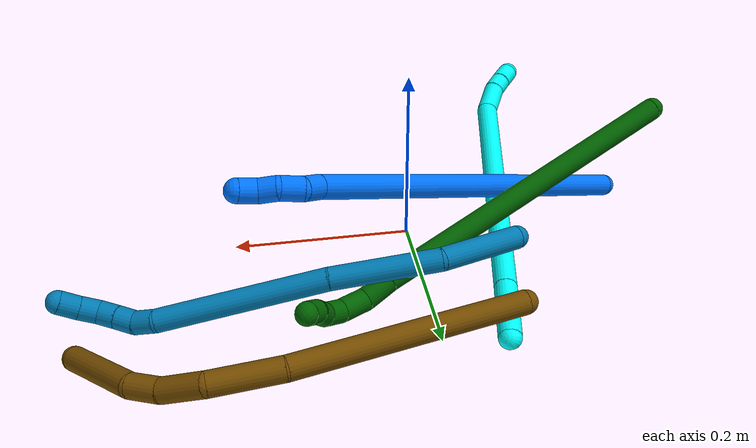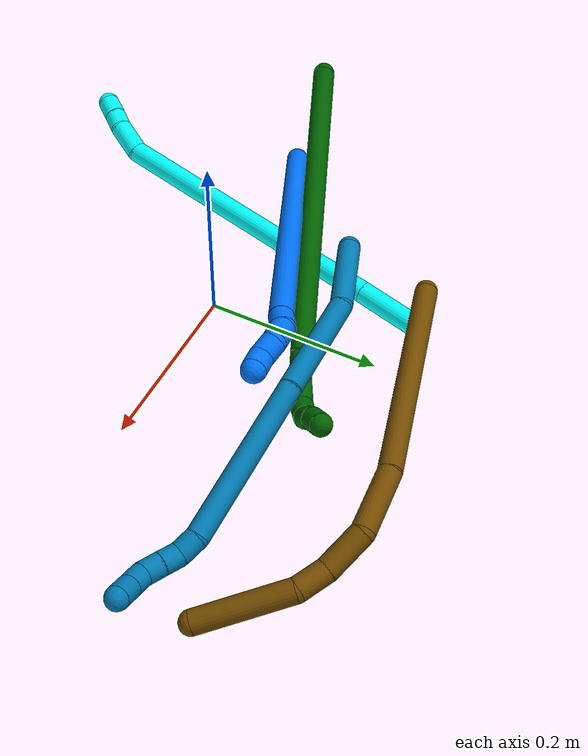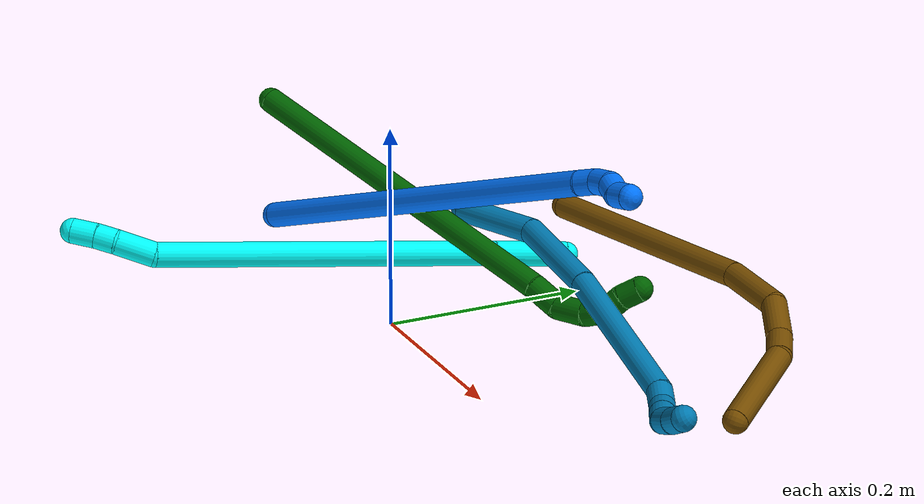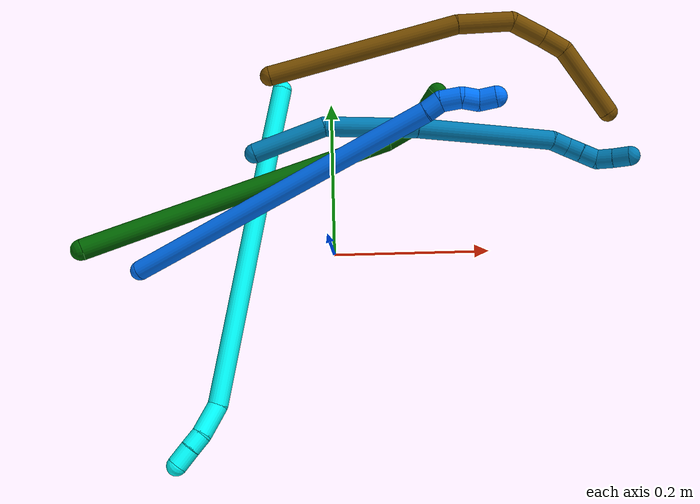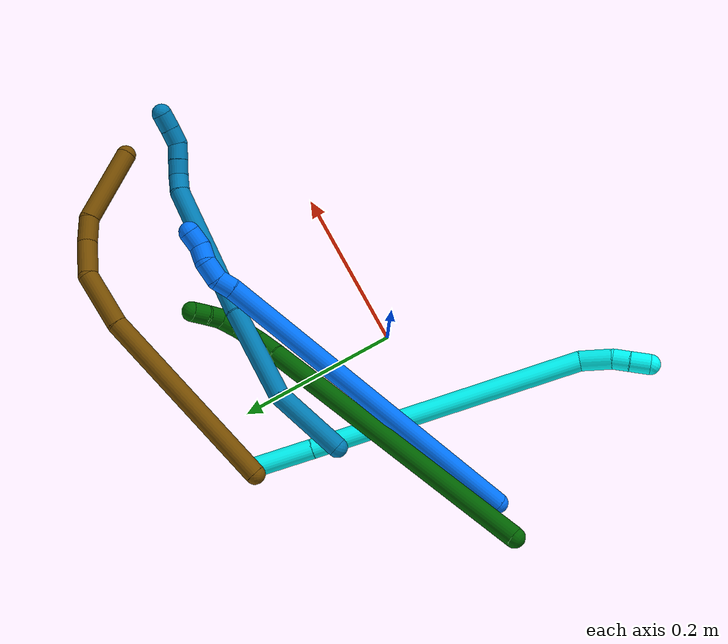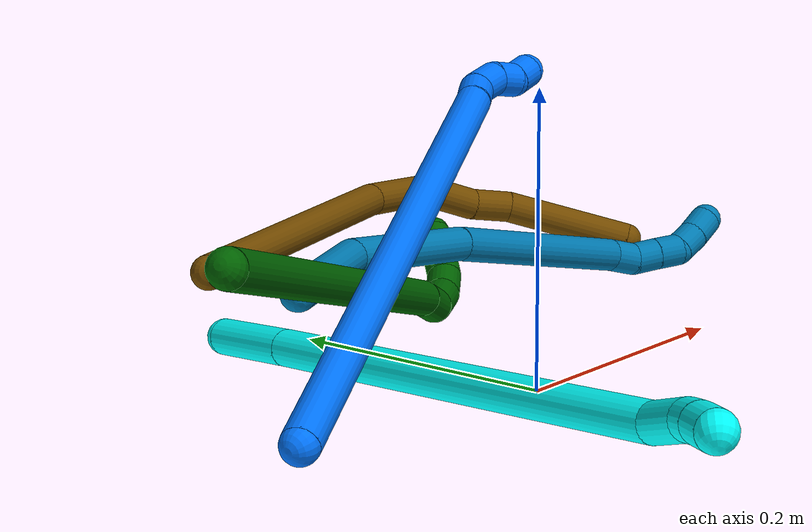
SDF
<sdf version="1.7">
 <world name="default">
  <model name="3">
   <static>0</static>
   <link name="3">
    <collision name="collision-cylinder-e_1_1_4">
     <pose>0.007932 -0.029636 0.019639 0.985557 0.219496 0.118199</pose>
     <geometry><cylinder><radius>0.0125</radius><length>0.072854</length></cylinder></geometry>
     <surface>
      <friction><ode><mu>1.16</mu><mu2>1.16</mu2><slip1>0</slip1><slip2>0</slip2></ode></friction>
      <contact><ode><kp>1e+06</kp><kd>1</kd><max_vel>0</max_vel><min_depth>0.001</min_depth></ode></contact>
     </surface>
    </collision>
    <visual name="visual-cylinder-e_1_1_4">
     <pose>0.007932 -0.029636 0.019639 0.985557 0.219496 0.118199</pose>
     <geometry><cylinder><radius>0.0125</radius><length>0.072854</length></cylinder></geometry>
     <material><ambient>0.003922 1 0.996078 1</ambient></material>
    </visual>
    <collision name="collision-cylinder-e_2_4_5">
     <pose>0.050563 -0.198595 0.132927 0.978995 0.203837 0.108863</pose>
     <geometry><cylinder><radius>0.0125</radius><length>0.34284</length></cylinder></geometry>
     <surface>
      <friction><ode><mu>1.16</mu><mu2>1.16</mu2><slip1>0</slip1><slip2>0</slip2></ode></friction>
      <contact><ode><kp>1e+06</kp><kd>1</kd><max_vel>0</max_vel><min_depth>0.001</min_depth></ode></contact>
     </surface>
    </collision>
    <visual name="visual-cylinder-e_2_4_5">
     <pose>0.050563 -0.198595 0.132927 0.978995 0.203837 0.108863</pose>
     <geometry><cylinder><radius>0.0125</radius><length>0.34284</length></cylinder></geometry>
     <material><ambient>0.003922 1 0.996078 1</ambient></material>
    </visual>
    <collision name="collision-cylinder-e_3_5_6">
     <pose>0.096044 -0.351499 0.236182 0.955162 0.574976 0.303696</pose>
     <geometry><cylinder><radius>0.0125</radius><length>0.039647</length></cylinder></geometry>
     <surface>
      <friction><ode><mu>1.16</mu><mu2>1.16</mu2><slip1>0</slip1><slip2>0</slip2></ode></friction>
      <contact><ode><kp>1e+06</kp><kd>1</kd><max_vel>0</max_vel><min_depth>0.001</min_depth></ode></contact>
     </surface>
    </collision>
    <visual name="visual-cylinder-e_3_5_6">
     <pose>0.096044 -0.351499 0.236182 0.955162 0.574976 0.303696</pose>
     <geometry><cylinder><radius>0.0125</radius><length>0.039647</length></cylinder></geometry>
     <material><ambient>0.003922 1 0.996078 1</ambient></material>
    </visual>
    <collision name="collision-cylinder-e_4_6_7">
     <pose>0.11283 -0.370294 0.252123 0.688532 0.631909 0.233355</pose>
     <geometry><cylinder><radius>0.0125</radius><length>0.020332</length></cylinder></geometry>
     <surface>
      <friction><ode><mu>1.16</mu><mu2>1.16</mu2><slip1>0</slip1><slip2>0</slip2></ode></friction>
      <contact><ode><kp>1e+06</kp><kd>1</kd><max_vel>0</max_vel><min_depth>0.001</min_depth></ode></contact>
     </surface>
    </collision>
    <visual name="visual-cylinder-e_4_6_7">
     <pose>0.11283 -0.370294 0.252123 0.688532 0.631909 0.233355</pose>
     <geometry><cylinder><radius>0.0125</radius><length>0.020332</length></cylinder></geometry>
     <material><ambient>0.003922 1 0.996078 1</ambient></material>
    </visual>
    <collision name="collision-cylinder-e_5_7_2">
     <pose>0.125328 -0.381602 0.266741 0.634413 0.563167 0.189362</pose>
     <geometry><cylinder><radius>0.0125</radius><length>0.024326</length></cylinder></geometry>
     <surface>
      <friction><ode><mu>1.16</mu><mu2>1.16</mu2><slip1>0</slip1><slip2>0</slip2></ode></friction>
      <contact><ode><kp>1e+06</kp><kd>1</kd><max_vel>0</max_vel><min_depth>0.001</min_depth></ode></contact>
     </surface>
    </collision>
    <visual name="visual-cylinder-e_5_7_2">
     <pose>0.125328 -0.381602 0.266741 0.634413 0.563167 0.189362</pose>
     <geometry><cylinder><radius>0.0125</radius><length>0.024326</length></cylinder></geometry>
     <material><ambient>0.003922 1 0.996078 1</ambient></material>
    </visual>
    <collision name="collision-sphere-2">
     <pose>0.131822 -0.387697 0.275025 0 -0 0</pose>
     <geometry><sphere><radius>0.0125</radius></sphere></geometry>
     <surface>
      <friction><ode><mu>1.16</mu><mu2>1.16</mu2><slip1>0</slip1><slip2>0</slip2></ode></friction>
      <contact><ode><kp>1e+06</kp><kd>1</kd><max_vel>0</max_vel><min_depth>0.001</min_depth></ode></contact>
     </surface>
    </collision>
    <visual name="visual-sphere-2">
     <pose>0.131822 -0.387697 0.275025 0 -0 0</pose>
     <geometry><sphere><radius>0.0125</radius></sphere></geometry>
     <material><ambient>0.003922 1 0.996078 1</ambient></material>
    </visual>
    <collision name="collision-sphere-7">
     <pose>0.118835 -0.375506 0.258457 0 -0 0</pose>
     <geometry><sphere><radius>0.0125</radius></sphere></geometry>
     <surface>
      <friction><ode><mu>1.16</mu><mu2>1.16</mu2><slip1>0</slip1><slip2>0</slip2></ode></friction>
      <contact><ode><kp>1e+06</kp><kd>1</kd><max_vel>0</max_vel><min_depth>0.001</min_depth></ode></contact>
     </surface>
    </collision>
    <visual name="visual-sphere-7">
     <pose>0.118835 -0.375506 0.258457 0 -0 0</pose>
     <geometry><sphere><radius>0.0125</radius></sphere></geometry>
     <material><ambient>0.003922 1 0.996078 1</ambient></material>
    </visual>
    <collision name="collision-sphere-6">
     <pose>0.106825 -0.365081 0.245789 0 -0 0</pose>
     <geometry><sphere><radius>0.0125</radius></sphere></geometry>
     <surface>
      <friction><ode><mu>1.16</mu><mu2>1.16</mu2><slip1>0</slip1><slip2>0</slip2></ode></friction>
      <contact><ode><kp>1e+06</kp><kd>1</kd><max_vel>0</max_vel><min_depth>0.001</min_depth></ode></contact>
     </surface>
    </collision>
    <visual name="visual-sphere-6">
     <pose>0.106825 -0.365081 0.245789 0 -0 0</pose>
     <geometry><sphere><radius>0.0125</radius></sphere></geometry>
     <material><ambient>0.003922 1 0.996078 1</ambient></material>
    </visual>
    <collision name="collision-sphere-5">
     <pose>0.085264 -0.337917 0.226575 0 -0 0</pose>
     <geometry><sphere><radius>0.0125</radius></sphere></geometry>
     <surface>
      <friction><ode><mu>1.16</mu><mu2>1.16</mu2><slip1>0</slip1><slip2>0</slip2></ode></friction>
      <contact><ode><kp>1e+06</kp><kd>1</kd><max_vel>0</max_vel><min_depth>0.001</min_depth></ode></contact>
     </surface>
    </collision>
    <visual name="visual-sphere-5">
     <pose>0.085264 -0.337917 0.226575 0 -0 0</pose>
     <geometry><sphere><radius>0.0125</radius></sphere></geometry>
     <material><ambient>0.003922 1 0.996078 1</ambient></material>
    </visual>
    <collision name="collision-sphere-1">
     <geometry><sphere><radius>0.0125</radius></sphere></geometry>
     <surface>
      <friction><ode><mu>1.16</mu><mu2>1.16</mu2><slip1>0</slip1><slip2>0</slip2></ode></friction>
      <contact><ode><kp>1e+06</kp><kd>1</kd><max_vel>0</max_vel><min_depth>0.001</min_depth></ode></contact>
     </surface>
    </collision>
    <visual name="visual-sphere-1">
     <geometry><sphere><radius>0.0125</radius></sphere></geometry>
     <material><ambient>0.003922 1 0.996078 1</ambient></material>
    </visual>
    <collision name="collision-sphere-4">
     <pose>0.015863 -0.059272 0.039279 0 -0 0</pose>
     <geometry><sphere><radius>0.0125</radius></sphere></geometry>
     <surface>
      <friction><ode><mu>1.16</mu><mu2>1.16</mu2><slip1>0</slip1><slip2>0</slip2></ode></friction>
      <contact><ode><kp>1e+06</kp><kd>1</kd><max_vel>0</max_vel><min_depth>0.001</min_depth></ode></contact>
     </surface>
    </collision>
    <visual name="visual-sphere-4">
     <pose>0.015863 -0.059272 0.039279 0 -0 0</pose>
     <geometry><sphere><radius>0.0125</radius></sphere></geometry>
     <material><ambient>0.003922 1 0.996078 1</ambient></material>
    </visual>
    <inertial>
     <pose>0.054127 -0.201987 0.135965 0 -0 0</pose>
     <mass>0.5</mass>
     <inertia><ixx>0.0037</ixx><ixy>0</ixy><ixz>0</ixz><iyy>0.002294</iyy><iyz>0</iyz><izz>0.002101</izz></inertia>
    </inertial>
   </link>
   <pose>-0.064232 0.220074 0.012425 -2.62375 -0.777927 -3.13736</pose>
  </model>
  <model name="6">
   <static>0</static>
   <link name="6">
    <collision name="collision-cylinder-e_1_1_4">
     <pose>0.026394 -0.002763 -0.183295 3.12652 0.142997 2.93194</pose>
     <geometry><cylinder><radius>0.0125</radius><length>0.370412</length></cylinder></geometry>
     <surface>
      <friction><ode><mu>1.16</mu><mu2>1.16</mu2><slip1>0</slip1><slip2>0</slip2></ode></friction>
      <contact><ode><kp>1e+06</kp><kd>1</kd><max_vel>0</max_vel><min_depth>0.001</min_depth></ode></contact>
     </surface>
    </collision>
    <visual name="visual-cylinder-e_1_1_4">
     <pose>0.026394 -0.002763 -0.183295 3.12652 0.142997 2.93194</pose>
     <geometry><cylinder><radius>0.0125</radius><length>0.370412</length></cylinder></geometry>
     <material><ambient>0 0.392157 0.003922 1</ambient></material>
    </visual>
    <collision name="collision-cylinder-e_2_4_5">
     <pose>0.053124 -0.005715 -0.382797 3.12984 0.020756 2.11151</pose>
     <geometry><cylinder><radius>0.0125</radius><length>0.032424</length></cylinder></geometry>
     <surface>
      <friction><ode><mu>1.16</mu><mu2>1.16</mu2><slip1>0</slip1><slip2>0</slip2></ode></friction>
      <contact><ode><kp>1e+06</kp><kd>1</kd><max_vel>0</max_vel><min_depth>0.001</min_depth></ode></contact>
     </surface>
    </collision>
    <visual name="visual-cylinder-e_2_4_5">
     <pose>0.053124 -0.005715 -0.382797 3.12984 0.020756 2.11151</pose>
     <geometry><cylinder><radius>0.0125</radius><length>0.032424</length></cylinder></geometry>
     <material><ambient>0 0.392157 0.003922 1</ambient></material>
    </visual>
    <collision name="collision-cylinder-e_3_5_6">
     <pose>0.060087 -0.003844 -0.413511 -3.00038 0.424737 -2.50772</pose>
     <geometry><cylinder><radius>0.0125</radius><length>0.032162</length></cylinder></geometry>
     <surface>
      <friction><ode><mu>1.16</mu><mu2>1.16</mu2><slip1>0</slip1><slip2>0</slip2></ode></friction>
      <contact><ode><kp>1e+06</kp><kd>1</kd><max_vel>0</max_vel><min_depth>0.001</min_depth></ode></contact>
     </surface>
    </collision>
    <visual name="visual-cylinder-e_3_5_6">
     <pose>0.060087 -0.003844 -0.413511 -3.00038 0.424737 -2.50772</pose>
     <geometry><cylinder><radius>0.0125</radius><length>0.032162</length></cylinder></geometry>
     <material><ambient>0 0.392157 0.003922 1</ambient></material>
    </visual>
    <collision name="collision-cylinder-e_4_6_7">
     <pose>0.074659 0.001249 -0.436288 -2.79038 0.733909 -2.27662</pose>
     <geometry><cylinder><radius>0.0125</radius><length>0.023724</length></cylinder></geometry>
     <surface>
      <friction><ode><mu>1.16</mu><mu2>1.16</mu2><slip1>0</slip1><slip2>0</slip2></ode></friction>
      <contact><ode><kp>1e+06</kp><kd>1</kd><max_vel>0</max_vel><min_depth>0.001</min_depth></ode></contact>
     </surface>
    </collision>
    <visual name="visual-cylinder-e_4_6_7">
     <pose>0.074659 0.001249 -0.436288 -2.79038 0.733909 -2.27662</pose>
     <geometry><cylinder><radius>0.0125</radius><length>0.023724</length></cylinder></geometry>
     <material><ambient>0 0.392157 0.003922 1</ambient></material>
    </visual>
    <collision name="collision-cylinder-e_5_7_8">
     <pose>0.091552 0.008993 -0.447433 -2.11838 1.01797 -1.56464</pose>
     <geometry><cylinder><radius>0.0125</radius><length>0.02103</length></cylinder></geometry>
     <surface>
      <friction><ode><mu>1.16</mu><mu2>1.16</mu2><slip1>0</slip1><slip2>0</slip2></ode></friction>
      <contact><ode><kp>1e+06</kp><kd>1</kd><max_vel>0</max_vel><min_depth>0.001</min_depth></ode></contact>
     </surface>
    </collision>
    <visual name="visual-cylinder-e_5_7_8">
     <pose>0.091552 0.008993 -0.447433 -2.11838 1.01797 -1.56464</pose>
     <geometry><cylinder><radius>0.0125</radius><length>0.02103</length></cylinder></geometry>
     <material><ambient>0 0.392157 0.003922 1</ambient></material>
    </visual>
    <collision name="collision-cylinder-e_6_8_2">
     <pose>0.1078 0.018766 -0.455169 -2.33636 0.805178 -1.57073</pose>
     <geometry><cylinder><radius>0.0125</radius><length>0.020248</length></cylinder></geometry>
     <surface>
      <friction><ode><mu>1.16</mu><mu2>1.16</mu2><slip1>0</slip1><slip2>0</slip2></ode></friction>
      <contact><ode><kp>1e+06</kp><kd>1</kd><max_vel>0</max_vel><min_depth>0.001</min_depth></ode></contact>
     </surface>
    </collision>
    <visual name="visual-cylinder-e_6_8_2">
     <pose>0.1078 0.018766 -0.455169 -2.33636 0.805178 -1.57073</pose>
     <geometry><cylinder><radius>0.0125</radius><length>0.020248</length></cylinder></geometry>
     <material><ambient>0 0.392157 0.003922 1</ambient></material>
    </visual>
    <collision name="collision-sphere-2">
     <pose>0.115099 0.023824 -0.460031 0 -0 0</pose>
     <geometry><sphere><radius>0.0125</radius></sphere></geometry>
     <surface>
      <friction><ode><mu>1.16</mu><mu2>1.16</mu2><slip1>0</slip1><slip2>0</slip2></ode></friction>
      <contact><ode><kp>1e+06</kp><kd>1</kd><max_vel>0</max_vel><min_depth>0.001</min_depth></ode></contact>
     </surface>
    </collision>
    <visual name="visual-sphere-2">
     <pose>0.115099 0.023824 -0.460031 0 -0 0</pose>
     <geometry><sphere><radius>0.0125</radius></sphere></geometry>
     <material><ambient>0 0.392157 0.003922 1</ambient></material>
    </visual>
    <collision name="collision-sphere-4">
     <pose>0.052787 -0.005525 -0.36659 0 -0 0</pose>
     <geometry><sphere><radius>0.0125</radius></sphere></geometry>
     <surface>
      <friction><ode><mu>1.16</mu><mu2>1.16</mu2><slip1>0</slip1><slip2>0</slip2></ode></friction>
      <contact><ode><kp>1e+06</kp><kd>1</kd><max_vel>0</max_vel><min_depth>0.001</min_depth></ode></contact>
     </surface>
    </collision>
    <visual name="visual-sphere-4">
     <pose>0.052787 -0.005525 -0.36659 0 -0 0</pose>
     <geometry><sphere><radius>0.0125</radius></sphere></geometry>
     <material><ambient>0 0.392157 0.003922 1</ambient></material>
    </visual>
    <collision name="collision-sphere-1">
     <geometry><sphere><radius>0.0125</radius></sphere></geometry>
     <surface>
      <friction><ode><mu>1.16</mu><mu2>1.16</mu2><slip1>0</slip1><slip2>0</slip2></ode></friction>
      <contact><ode><kp>1e+06</kp><kd>1</kd><max_vel>0</max_vel><min_depth>0.001</min_depth></ode></contact>
     </surface>
    </collision>
    <visual name="visual-sphere-1">
     <geometry><sphere><radius>0.0125</radius></sphere></geometry>
     <material><ambient>0 0.392157 0.003922 1</ambient></material>
    </visual>
    <collision name="collision-sphere-8">
     <pose>0.100501 0.013707 -0.450308 0 -0 0</pose>
     <geometry><sphere><radius>0.0125</radius></sphere></geometry>
     <surface>
      <friction><ode><mu>1.16</mu><mu2>1.16</mu2><slip1>0</slip1><slip2>0</slip2></ode></friction>
      <contact><ode><kp>1e+06</kp><kd>1</kd><max_vel>0</max_vel><min_depth>0.001</min_depth></ode></contact>
     </surface>
    </collision>
    <visual name="visual-sphere-8">
     <pose>0.100501 0.013707 -0.450308 0 -0 0</pose>
     <geometry><sphere><radius>0.0125</radius></sphere></geometry>
     <material><ambient>0 0.392157 0.003922 1</ambient></material>
    </visual>
    <collision name="collision-sphere-5">
     <pose>0.05346 -0.005906 -0.399005 0 -0 0</pose>
     <geometry><sphere><radius>0.0125</radius></sphere></geometry>
     <surface>
      <friction><ode><mu>1.16</mu><mu2>1.16</mu2><slip1>0</slip1><slip2>0</slip2></ode></friction>
      <contact><ode><kp>1e+06</kp><kd>1</kd><max_vel>0</max_vel><min_depth>0.001</min_depth></ode></contact>
     </surface>
    </collision>
    <visual name="visual-sphere-5">
     <pose>0.05346 -0.005906 -0.399005 0 -0 0</pose>
     <geometry><sphere><radius>0.0125</radius></sphere></geometry>
     <material><ambient>0 0.392157 0.003922 1</ambient></material>
    </visual>
    <collision name="collision-sphere-6">
     <pose>0.066714 -0.001782 -0.428017 0 -0 0</pose>
     <geometry><sphere><radius>0.0125</radius></sphere></geometry>
     <surface>
      <friction><ode><mu>1.16</mu><mu2>1.16</mu2><slip1>0</slip1><slip2>0</slip2></ode></friction>
      <contact><ode><kp>1e+06</kp><kd>1</kd><max_vel>0</max_vel><min_depth>0.001</min_depth></ode></contact>
     </surface>
    </collision>
    <visual name="visual-sphere-6">
     <pose>0.066714 -0.001782 -0.428017 0 -0 0</pose>
     <geometry><sphere><radius>0.0125</radius></sphere></geometry>
     <material><ambient>0 0.392157 0.003922 1</ambient></material>
    </visual>
    <collision name="collision-sphere-7">
     <pose>0.082604 0.004279 -0.444558 0 -0 0</pose>
     <geometry><sphere><radius>0.0125</radius></sphere></geometry>
     <surface>
      <friction><ode><mu>1.16</mu><mu2>1.16</mu2><slip1>0</slip1><slip2>0</slip2></ode></friction>
      <contact><ode><kp>1e+06</kp><kd>1</kd><max_vel>0</max_vel><min_depth>0.001</min_depth></ode></contact>
     </surface>
    </collision>
    <visual name="visual-sphere-7">
     <pose>0.082604 0.004279 -0.444558 0 -0 0</pose>
     <geometry><sphere><radius>0.0125</radius></sphere></geometry>
     <material><ambient>0 0.392157 0.003922 1</ambient></material>
    </visual>
    <inertial>
     <pose>0.038622 -0.001467 -0.245164 0 -0 0</pose>
     <mass>0.5</mass>
     <inertia>
      <ixx>-0.003238</ixx>
      <ixy>0</ixy>
      <ixz>0</ixz>
      <iyy>0.005043</iyy>
      <iyz>0</iyz>
      <izz>-0.000586</izz>
     </inertia>
    </inertial>
   </link>
   <pose>-0.285392 -0.001935 0.136646 0.224542 -1.13324 0.170892</pose>
  </model>
  <model name="9">
   <static>0</static>
   <link name="9">
    <collision name="collision-cylinder-e_1_1_4">
     <pose>0.030172 0.006065 0.035208 -0.170583 0.701297 -0.062524</pose>
     <geometry><cylinder><radius>0.0125</radius><length>0.093525</length></cylinder></geometry>
     <surface>
      <friction><ode><mu>1.16</mu><mu2>1.16</mu2><slip1>0</slip1><slip2>0</slip2></ode></friction>
      <contact><ode><kp>1e+06</kp><kd>1</kd><max_vel>0</max_vel><min_depth>0.001</min_depth></ode></contact>
     </surface>
    </collision>
    <visual name="visual-cylinder-e_1_1_4">
     <pose>0.030172 0.006065 0.035208 -0.170583 0.701297 -0.062524</pose>
     <geometry><cylinder><radius>0.0125</radius><length>0.093525</length></cylinder></geometry>
     <material><ambient>0 0.490196 0.709804 1</ambient></material>
    </visual>
    <collision name="collision-cylinder-e_2_4_5">
     <pose>0.111495 0.011325 0.098792 0.028342 1.06415 0.016686</pose>
     <geometry><cylinder><radius>0.0125</radius><length>0.117001</length></cylinder></geometry>
     <surface>
      <friction><ode><mu>1.16</mu><mu2>1.16</mu2><slip1>0</slip1><slip2>0</slip2></ode></friction>
      <contact><ode><kp>1e+06</kp><kd>1</kd><max_vel>0</max_vel><min_depth>0.001</min_depth></ode></contact>
     </surface>
    </collision>
    <visual name="visual-cylinder-e_2_4_5">
     <pose>0.111495 0.011325 0.098792 0.028342 1.06415 0.016686</pose>
     <geometry><cylinder><radius>0.0125</radius><length>0.117001</length></cylinder></geometry>
     <material><ambient>0 0.490196 0.709804 1</ambient></material>
    </visual>
    <collision name="collision-cylinder-e_3_5_6">
     <pose>0.246409 0.014366 0.16216 -0.109454 1.17294 -0.072768</pose>
     <geometry><cylinder><radius>0.0125</radius><length>0.181717</length></cylinder></geometry>
     <surface>
      <friction><ode><mu>1.16</mu><mu2>1.16</mu2><slip1>0</slip1><slip2>0</slip2></ode></friction>
      <contact><ode><kp>1e+06</kp><kd>1</kd><max_vel>0</max_vel><min_depth>0.001</min_depth></ode></contact>
     </surface>
    </collision>
    <visual name="visual-cylinder-e_3_5_6">
     <pose>0.246409 0.014366 0.16216 -0.109454 1.17294 -0.072768</pose>
     <geometry><cylinder><radius>0.0125</radius><length>0.181717</length></cylinder></geometry>
     <material><ambient>0 0.490196 0.709804 1</ambient></material>
    </visual>
    <collision name="collision-cylinder-e_4_6_7">
     <pose>0.341594 0.016846 0.198741 0.709628 1.38938 0.598867</pose>
     <geometry><cylinder><radius>0.0125</radius><length>0.023229</length></cylinder></geometry>
     <surface>
      <friction><ode><mu>1.16</mu><mu2>1.16</mu2><slip1>0</slip1><slip2>0</slip2></ode></friction>
      <contact><ode><kp>1e+06</kp><kd>1</kd><max_vel>0</max_vel><min_depth>0.001</min_depth></ode></contact>
     </surface>
    </collision>
    <visual name="visual-cylinder-e_4_6_7">
     <pose>0.341594 0.016846 0.198741 0.709628 1.38938 0.598867</pose>
     <geometry><cylinder><radius>0.0125</radius><length>0.023229</length></cylinder></geometry>
     <material><ambient>0 0.490196 0.709804 1</ambient></material>
    </visual>
    <collision name="collision-cylinder-e_5_7_8">
     <pose>0.361789 0.010809 0.203076 1.03958 1.0174 0.617833</pose>
     <geometry><cylinder><radius>0.0125</radius><length>0.020621</length></cylinder></geometry>
     <surface>
      <friction><ode><mu>1.16</mu><mu2>1.16</mu2><slip1>0</slip1><slip2>0</slip2></ode></friction>
      <contact><ode><kp>1e+06</kp><kd>1</kd><max_vel>0</max_vel><min_depth>0.001</min_depth></ode></contact>
     </surface>
    </collision>
    <visual name="visual-cylinder-e_5_7_8">
     <pose>0.361789 0.010809 0.203076 1.03958 1.0174 0.617833</pose>
     <geometry><cylinder><radius>0.0125</radius><length>0.020621</length></cylinder></geometry>
     <material><ambient>0 0.490196 0.709804 1</ambient></material>
    </visual>
    <collision name="collision-cylinder-e_6_8_9">
     <pose>0.379627 0.001529 0.208493 1.04527 1.03964 0.636946</pose>
     <geometry><cylinder><radius>0.0125</radius><length>0.02103</length></cylinder></geometry>
     <surface>
      <friction><ode><mu>1.16</mu><mu2>1.16</mu2><slip1>0</slip1><slip2>0</slip2></ode></friction>
      <contact><ode><kp>1e+06</kp><kd>1</kd><max_vel>0</max_vel><min_depth>0.001</min_depth></ode></contact>
     </surface>
    </collision>
    <visual name="visual-cylinder-e_6_8_9">
     <pose>0.379627 0.001529 0.208493 1.04527 1.03964 0.636946</pose>
     <geometry><cylinder><radius>0.0125</radius><length>0.02103</length></cylinder></geometry>
     <material><ambient>0 0.490196 0.709804 1</ambient></material>
    </visual>
    <collision name="collision-cylinder-e_7_9_10">
     <pose>0.395294 -0.006862 0.218636 0.468806 0.667545 0.165224</pose>
     <geometry><cylinder><radius>0.0125</radius><length>0.021326</length></cylinder></geometry>
     <surface>
      <friction><ode><mu>1.16</mu><mu2>1.16</mu2><slip1>0</slip1><slip2>0</slip2></ode></friction>
      <contact><ode><kp>1e+06</kp><kd>1</kd><max_vel>0</max_vel><min_depth>0.001</min_depth></ode></contact>
     </surface>
    </collision>
    <visual name="visual-cylinder-e_7_9_10">
     <pose>0.395294 -0.006862 0.218636 0.468806 0.667545 0.165224</pose>
     <geometry><cylinder><radius>0.0125</radius><length>0.021326</length></cylinder></geometry>
     <material><ambient>0 0.490196 0.709804 1</ambient></material>
    </visual>
    <collision name="collision-cylinder-e_8_10_2">
     <pose>0.407667 -0.014837 0.234183 0.478753 0.565272 0.141516</pose>
     <geometry><cylinder><radius>0.0125</radius><length>0.021551</length></cylinder></geometry>
     <surface>
      <friction><ode><mu>1.16</mu><mu2>1.16</mu2><slip1>0</slip1><slip2>0</slip2></ode></friction>
      <contact><ode><kp>1e+06</kp><kd>1</kd><max_vel>0</max_vel><min_depth>0.001</min_depth></ode></contact>
     </surface>
    </collision>
    <visual name="visual-cylinder-e_8_10_2">
     <pose>0.407667 -0.014837 0.234183 0.478753 0.565272 0.141516</pose>
     <geometry><cylinder><radius>0.0125</radius><length>0.021551</length></cylinder></geometry>
     <material><ambient>0 0.490196 0.709804 1</ambient></material>
    </visual>
    <collision name="collision-sphere-2">
     <pose>0.413439 -0.019029 0.242259 0 -0 0</pose>
     <geometry><sphere><radius>0.0125</radius></sphere></geometry>
     <surface>
      <friction><ode><mu>1.16</mu><mu2>1.16</mu2><slip1>0</slip1><slip2>0</slip2></ode></friction>
      <contact><ode><kp>1e+06</kp><kd>1</kd><max_vel>0</max_vel><min_depth>0.001</min_depth></ode></contact>
     </surface>
    </collision>
    <visual name="visual-sphere-2">
     <pose>0.413439 -0.019029 0.242259 0 -0 0</pose>
     <geometry><sphere><radius>0.0125</radius></sphere></geometry>
     <material><ambient>0 0.490196 0.709804 1</ambient></material>
    </visual>
    <collision name="collision-sphere-10">
     <pose>0.401895 -0.010645 0.226107 0 -0 0</pose>
     <geometry><sphere><radius>0.0125</radius></sphere></geometry>
     <surface>
      <friction><ode><mu>1.16</mu><mu2>1.16</mu2><slip1>0</slip1><slip2>0</slip2></ode></friction>
      <contact><ode><kp>1e+06</kp><kd>1</kd><max_vel>0</max_vel><min_depth>0.001</min_depth></ode></contact>
     </surface>
    </collision>
    <visual name="visual-sphere-10">
     <pose>0.401895 -0.010645 0.226107 0 -0 0</pose>
     <geometry><sphere><radius>0.0125</radius></sphere></geometry>
     <material><ambient>0 0.490196 0.709804 1</ambient></material>
    </visual>
    <collision name="collision-sphere-9">
     <pose>0.388693 -0.003078 0.211165 0 -0 0</pose>
     <geometry><sphere><radius>0.0125</radius></sphere></geometry>
     <surface>
      <friction><ode><mu>1.16</mu><mu2>1.16</mu2><slip1>0</slip1><slip2>0</slip2></ode></friction>
      <contact><ode><kp>1e+06</kp><kd>1</kd><max_vel>0</max_vel><min_depth>0.001</min_depth></ode></contact>
     </surface>
    </collision>
    <visual name="visual-sphere-9">
     <pose>0.388693 -0.003078 0.211165 0 -0 0</pose>
     <geometry><sphere><radius>0.0125</radius></sphere></geometry>
     <material><ambient>0 0.490196 0.709804 1</ambient></material>
    </visual>
    <collision name="collision-sphere-4">
     <pose>0.060343 0.01213 0.070417 0 -0 0</pose>
     <geometry><sphere><radius>0.0125</radius></sphere></geometry>
     <surface>
      <friction><ode><mu>1.16</mu><mu2>1.16</mu2><slip1>0</slip1><slip2>0</slip2></ode></friction>
      <contact><ode><kp>1e+06</kp><kd>1</kd><max_vel>0</max_vel><min_depth>0.001</min_depth></ode></contact>
     </surface>
    </collision>
    <visual name="visual-sphere-4">
     <pose>0.060343 0.01213 0.070417 0 -0 0</pose>
     <geometry><sphere><radius>0.0125</radius></sphere></geometry>
     <material><ambient>0 0.490196 0.709804 1</ambient></material>
    </visual>
    <collision name="collision-sphere-1">
     <geometry><sphere><radius>0.0125</radius></sphere></geometry>
     <surface>
      <friction><ode><mu>1.16</mu><mu2>1.16</mu2><slip1>0</slip1><slip2>0</slip2></ode></friction>
      <contact><ode><kp>1e+06</kp><kd>1</kd><max_vel>0</max_vel><min_depth>0.001</min_depth></ode></contact>
     </surface>
    </collision>
    <visual name="visual-sphere-1">
     <geometry><sphere><radius>0.0125</radius></sphere></geometry>
     <material><ambient>0 0.490196 0.709804 1</ambient></material>
    </visual>
    <collision name="collision-sphere-8">
     <pose>0.370561 0.006137 0.205821 0 -0 0</pose>
     <geometry><sphere><radius>0.0125</radius></sphere></geometry>
     <surface>
      <friction><ode><mu>1.16</mu><mu2>1.16</mu2><slip1>0</slip1><slip2>0</slip2></ode></friction>
      <contact><ode><kp>1e+06</kp><kd>1</kd><max_vel>0</max_vel><min_depth>0.001</min_depth></ode></contact>
     </surface>
    </collision>
    <visual name="visual-sphere-8">
     <pose>0.370561 0.006137 0.205821 0 -0 0</pose>
     <geometry><sphere><radius>0.0125</radius></sphere></geometry>
     <material><ambient>0 0.490196 0.709804 1</ambient></material>
    </visual>
    <collision name="collision-sphere-5">
     <pose>0.162647 0.010521 0.127168 0 -0 0</pose>
     <geometry><sphere><radius>0.0125</radius></sphere></geometry>
     <surface>
      <friction><ode><mu>1.16</mu><mu2>1.16</mu2><slip1>0</slip1><slip2>0</slip2></ode></friction>
      <contact><ode><kp>1e+06</kp><kd>1</kd><max_vel>0</max_vel><min_depth>0.001</min_depth></ode></contact>
     </surface>
    </collision>
    <visual name="visual-sphere-5">
     <pose>0.162647 0.010521 0.127168 0 -0 0</pose>
     <geometry><sphere><radius>0.0125</radius></sphere></geometry>
     <material><ambient>0 0.490196 0.709804 1</ambient></material>
    </visual>
    <collision name="collision-sphere-6">
     <pose>0.330171 0.018212 0.197152 0 -0 0</pose>
     <geometry><sphere><radius>0.0125</radius></sphere></geometry>
     <surface>
      <friction><ode><mu>1.16</mu><mu2>1.16</mu2><slip1>0</slip1><slip2>0</slip2></ode></friction>
      <contact><ode><kp>1e+06</kp><kd>1</kd><max_vel>0</max_vel><min_depth>0.001</min_depth></ode></contact>
     </surface>
    </collision>
    <visual name="visual-sphere-6">
     <pose>0.330171 0.018212 0.197152 0 -0 0</pose>
     <geometry><sphere><radius>0.0125</radius></sphere></geometry>
     <material><ambient>0 0.490196 0.709804 1</ambient></material>
    </visual>
    <collision name="collision-sphere-7">
     <pose>0.353018 0.015481 0.200331 0 -0 0</pose>
     <geometry><sphere><radius>0.0125</radius></sphere></geometry>
     <surface>
      <friction><ode><mu>1.16</mu><mu2>1.16</mu2><slip1>0</slip1><slip2>0</slip2></ode></friction>
      <contact><ode><kp>1e+06</kp><kd>1</kd><max_vel>0</max_vel><min_depth>0.001</min_depth></ode></contact>
     </surface>
    </collision>
    <visual name="visual-sphere-7">
     <pose>0.353018 0.015481 0.200331 0 -0 0</pose>
     <geometry><sphere><radius>0.0125</radius></sphere></geometry>
     <material><ambient>0 0.490196 0.709804 1</ambient></material>
    </visual>
    <inertial>
     <pose>0.202476 0.009366 0.134434 0 -0 0</pose>
     <mass>0.5</mass>
     <inertia>
      <ixx>0.000339</ixx>
      <ixy>0</ixy>
      <ixz>0</ixz>
      <iyy>0.000707</iyy>
      <iyz>0</iyz>
      <izz>-0.000648</izz>
     </inertia>
    </inertial>
   </link>
   <pose>-0.094804 0.122775 0.064905 -0.92197 0.443852 -0.407956</pose>
  </model>
  <model name="12">
   <static>0</static>
   <link name="12">
    <collision name="collision-cylinder-e_1_1_4">
     <pose>-0.077282 -0.022664 0.093927 0.236772 -0.674641 -0.083384</pose>
     <geometry><cylinder><radius>0.0125</radius><length>0.247454</length></cylinder></geometry>
     <surface>
      <friction><ode><mu>1.16</mu><mu2>1.16</mu2><slip1>0</slip1><slip2>0</slip2></ode></friction>
      <contact><ode><kp>1e+06</kp><kd>1</kd><max_vel>0</max_vel><min_depth>0.001</min_depth></ode></contact>
     </surface>
    </collision>
    <visual name="visual-cylinder-e_1_1_4">
     <pose>-0.077282 -0.022664 0.093927 0.236772 -0.674641 -0.083384</pose>
     <geometry><cylinder><radius>0.0125</radius><length>0.247454</length></cylinder></geometry>
     <material><ambient>0.466667 0.301961 0 1</ambient></material>
    </visual>
    <collision name="collision-cylinder-e_2_4_5">
     <pose>-0.178155 -0.058079 0.211293 0.498181 -0.723967 -0.192054</pose>
     <geometry><cylinder><radius>0.0125</radius><length>0.071233</length></cylinder></geometry>
     <surface>
      <friction><ode><mu>1.16</mu><mu2>1.16</mu2><slip1>0</slip1><slip2>0</slip2></ode></friction>
      <contact><ode><kp>1e+06</kp><kd>1</kd><max_vel>0</max_vel><min_depth>0.001</min_depth></ode></contact>
     </surface>
    </collision>
    <visual name="visual-cylinder-e_2_4_5">
     <pose>-0.178155 -0.058079 0.211293 0.498181 -0.723967 -0.192054</pose>
     <geometry><cylinder><radius>0.0125</radius><length>0.071233</length></cylinder></geometry>
     <material><ambient>0.466667 0.301961 0 1</ambient></material>
    </visual>
    <collision name="collision-cylinder-e_3_5_6">
     <pose>-0.214391 -0.088697 0.243543 1.11274 -0.565548 -0.357542</pose>
     <geometry><cylinder><radius>0.0125</radius><length>0.047194</length></cylinder></geometry>
     <surface>
      <friction><ode><mu>1.16</mu><mu2>1.16</mu2><slip1>0</slip1><slip2>0</slip2></ode></friction>
      <contact><ode><kp>1e+06</kp><kd>1</kd><max_vel>0</max_vel><min_depth>0.001</min_depth></ode></contact>
     </surface>
    </collision>
    <visual name="visual-cylinder-e_3_5_6">
     <pose>-0.214391 -0.088697 0.243543 1.11274 -0.565548 -0.357542</pose>
     <geometry><cylinder><radius>0.0125</radius><length>0.047194</length></cylinder></geometry>
     <material><ambient>0.466667 0.301961 0 1</ambient></material>
    </visual>
    <collision name="collision-cylinder-e_4_6_7">
     <pose>-0.238565 -0.118034 0.255612 1.29392 -0.768653 -0.593026</pose>
     <geometry><cylinder><radius>0.0125</radius><length>0.033169</length></cylinder></geometry>
     <surface>
      <friction><ode><mu>1.16</mu><mu2>1.16</mu2><slip1>0</slip1><slip2>0</slip2></ode></friction>
      <contact><ode><kp>1e+06</kp><kd>1</kd><max_vel>0</max_vel><min_depth>0.001</min_depth></ode></contact>
     </surface>
    </collision>
    <visual name="visual-cylinder-e_4_6_7">
     <pose>-0.238565 -0.118034 0.255612 1.29392 -0.768653 -0.593026</pose>
     <geometry><cylinder><radius>0.0125</radius><length>0.033169</length></cylinder></geometry>
     <material><ambient>0.466667 0.301961 0 1</ambient></material>
    </visual>
    <collision name="collision-cylinder-e_5_7_2">
     <pose>-0.276349 -0.172096 0.252222 1.72564 -0.547022 -0.6334</pose>
     <geometry><cylinder><radius>0.0125</radius><length>0.10095</length></cylinder></geometry>
     <surface>
      <friction><ode><mu>1.16</mu><mu2>1.16</mu2><slip1>0</slip1><slip2>0</slip2></ode></friction>
      <contact><ode><kp>1e+06</kp><kd>1</kd><max_vel>0</max_vel><min_depth>0.001</min_depth></ode></contact>
     </surface>
    </collision>
    <visual name="visual-cylinder-e_5_7_2">
     <pose>-0.276349 -0.172096 0.252222 1.72564 -0.547022 -0.6334</pose>
     <geometry><cylinder><radius>0.0125</radius><length>0.10095</length></cylinder></geometry>
     <material><ambient>0.466667 0.301961 0 1</ambient></material>
    </visual>
    <collision name="collision-sphere-2">
     <pose>-0.302603 -0.21469 0.245573 0 -0 0</pose>
     <geometry><sphere><radius>0.0125</radius></sphere></geometry>
     <surface>
      <friction><ode><mu>1.16</mu><mu2>1.16</mu2><slip1>0</slip1><slip2>0</slip2></ode></friction>
      <contact><ode><kp>1e+06</kp><kd>1</kd><max_vel>0</max_vel><min_depth>0.001</min_depth></ode></contact>
     </surface>
    </collision>
    <visual name="visual-sphere-2">
     <pose>-0.302603 -0.21469 0.245573 0 -0 0</pose>
     <geometry><sphere><radius>0.0125</radius></sphere></geometry>
     <material><ambient>0.466667 0.301961 0 1</ambient></material>
    </visual>
    <collision name="collision-sphere-7">
     <pose>-0.250094 -0.129502 0.258871 0 -0 0</pose>
     <geometry><sphere><radius>0.0125</radius></sphere></geometry>
     <surface>
      <friction><ode><mu>1.16</mu><mu2>1.16</mu2><slip1>0</slip1><slip2>0</slip2></ode></friction>
      <contact><ode><kp>1e+06</kp><kd>1</kd><max_vel>0</max_vel><min_depth>0.001</min_depth></ode></contact>
     </surface>
    </collision>
    <visual name="visual-sphere-7">
     <pose>-0.250094 -0.129502 0.258871 0 -0 0</pose>
     <geometry><sphere><radius>0.0125</radius></sphere></geometry>
     <material><ambient>0.466667 0.301961 0 1</ambient></material>
    </visual>
    <collision name="collision-sphere-6">
     <pose>-0.227036 -0.106566 0.252353 0 -0 0</pose>
     <geometry><sphere><radius>0.0125</radius></sphere></geometry>
     <surface>
      <friction><ode><mu>1.16</mu><mu2>1.16</mu2><slip1>0</slip1><slip2>0</slip2></ode></friction>
      <contact><ode><kp>1e+06</kp><kd>1</kd><max_vel>0</max_vel><min_depth>0.001</min_depth></ode></contact>
     </surface>
    </collision>
    <visual name="visual-sphere-6">
     <pose>-0.227036 -0.106566 0.252353 0 -0 0</pose>
     <geometry><sphere><radius>0.0125</radius></sphere></geometry>
     <material><ambient>0.466667 0.301961 0 1</ambient></material>
    </visual>
    <collision name="collision-sphere-5">
     <pose>-0.201746 -0.070829 0.234733 0 -0 0</pose>
     <geometry><sphere><radius>0.0125</radius></sphere></geometry>
     <surface>
      <friction><ode><mu>1.16</mu><mu2>1.16</mu2><slip1>0</slip1><slip2>0</slip2></ode></friction>
      <contact><ode><kp>1e+06</kp><kd>1</kd><max_vel>0</max_vel><min_depth>0.001</min_depth></ode></contact>
     </surface>
    </collision>
    <visual name="visual-sphere-5">
     <pose>-0.201746 -0.070829 0.234733 0 -0 0</pose>
     <geometry><sphere><radius>0.0125</radius></sphere></geometry>
     <material><ambient>0.466667 0.301961 0 1</ambient></material>
    </visual>
    <collision name="collision-sphere-1">
     <geometry><sphere><radius>0.0125</radius></sphere></geometry>
     <surface>
      <friction><ode><mu>1.16</mu><mu2>1.16</mu2><slip1>0</slip1><slip2>0</slip2></ode></friction>
      <contact><ode><kp>1e+06</kp><kd>1</kd><max_vel>0</max_vel><min_depth>0.001</min_depth></ode></contact>
     </surface>
    </collision>
    <visual name="visual-sphere-1">
     <geometry><sphere><radius>0.0125</radius></sphere></geometry>
     <material><ambient>0.466667 0.301961 0 1</ambient></material>
    </visual>
    <collision name="collision-sphere-4">
     <pose>-0.154564 -0.045329 0.187853 0 -0 0</pose>
     <geometry><sphere><radius>0.0125</radius></sphere></geometry>
     <surface>
      <friction><ode><mu>1.16</mu><mu2>1.16</mu2><slip1>0</slip1><slip2>0</slip2></ode></friction>
      <contact><ode><kp>1e+06</kp><kd>1</kd><max_vel>0</max_vel><min_depth>0.001</min_depth></ode></contact>
     </surface>
    </collision>
    <visual name="visual-sphere-4">
     <pose>-0.154564 -0.045329 0.187853 0 -0 0</pose>
     <geometry><sphere><radius>0.0125</radius></sphere></geometry>
     <material><ambient>0.466667 0.301961 0 1</ambient></material>
    </visual>
    <inertial>
     <pose>-0.155485 -0.070439 0.167455 0 -0 0</pose>
     <mass>0.5</mass>
     <inertia>
      <ixx>0.000926</ixx>
      <ixy>0</ixy>
      <ixz>0</ixz>
      <iyy>0.001149</iyy>
      <iyz>0</iyz>
      <izz>0.001223</izz>
     </inertia>
    </inertial>
   </link>
   <pose>-0.075228 0.224003 0.059491 1.96487 0.654195 2.7061</pose>
  </model>
  <model name="14">
   <static>0</static>
   <link name="14">
    <collision name="collision-cylinder-e_1_1_4">
     <pose>0.046024 0.059907 0.19354 -0.300181 0.223377 -0.033919</pose>
     <geometry><cylinder><radius>0.0125</radius><length>0.415522</length></cylinder></geometry>
     <surface>
      <friction><ode><mu>1.16</mu><mu2>1.16</mu2><slip1>0</slip1><slip2>0</slip2></ode></friction>
      <contact><ode><kp>1e+06</kp><kd>1</kd><max_vel>0</max_vel><min_depth>0.001</min_depth></ode></contact>
     </surface>
    </collision>
    <visual name="visual-cylinder-e_1_1_4">
     <pose>0.046024 0.059907 0.19354 -0.300181 0.223377 -0.033919</pose>
     <geometry><cylinder><radius>0.0125</radius><length>0.415522</length></cylinder></geometry>
     <material><ambient>0 0.462745 1 1</ambient></material>
    </visual>
    <collision name="collision-cylinder-e_2_4_5">
     <pose>0.095552 0.122934 0.395923 -0.339091 0.357585 -0.061856</pose>
     <geometry><cylinder><radius>0.0125</radius><length>0.020023</length></cylinder></geometry>
     <surface>
      <friction><ode><mu>1.16</mu><mu2>1.16</mu2><slip1>0</slip1><slip2>0</slip2></ode></friction>
      <contact><ode><kp>1e+06</kp><kd>1</kd><max_vel>0</max_vel><min_depth>0.001</min_depth></ode></contact>
     </surface>
    </collision>
    <visual name="visual-cylinder-e_2_4_5">
     <pose>0.095552 0.122934 0.395923 -0.339091 0.357585 -0.061856</pose>
     <geometry><cylinder><radius>0.0125</radius><length>0.020023</length></cylinder></geometry>
     <material><ambient>0 0.462745 1 1</ambient></material>
    </visual>
    <collision name="collision-cylinder-e_3_5_6">
     <pose>0.099208 0.126623 0.416793 -0.047385 0.012606 -0.000299</pose>
     <geometry><cylinder><radius>0.0125</radius><length>0.024079</length></cylinder></geometry>
     <surface>
      <friction><ode><mu>1.16</mu><mu2>1.16</mu2><slip1>0</slip1><slip2>0</slip2></ode></friction>
      <contact><ode><kp>1e+06</kp><kd>1</kd><max_vel>0</max_vel><min_depth>0.001</min_depth></ode></contact>
     </surface>
    </collision>
    <visual name="visual-cylinder-e_3_5_6">
     <pose>0.099208 0.126623 0.416793 -0.047385 0.012606 -0.000299</pose>
     <geometry><cylinder><radius>0.0125</radius><length>0.024079</length></cylinder></geometry>
     <material><ambient>0 0.462745 1 1</ambient></material>
    </visual>
    <collision name="collision-cylinder-e_4_6_7">
     <pose>0.098625 0.123394 0.438064 0.389878 -0.073362 -0.014491</pose>
     <geometry><cylinder><radius>0.0125</radius><length>0.020048</length></cylinder></geometry>
     <surface>
      <friction><ode><mu>1.16</mu><mu2>1.16</mu2><slip1>0</slip1><slip2>0</slip2></ode></friction>
      <contact><ode><kp>1e+06</kp><kd>1</kd><max_vel>0</max_vel><min_depth>0.001</min_depth></ode></contact>
     </surface>
    </collision>
    <visual name="visual-cylinder-e_4_6_7">
     <pose>0.098625 0.123394 0.438064 0.389878 -0.073362 -0.014491</pose>
     <geometry><cylinder><radius>0.0125</radius><length>0.020048</length></cylinder></geometry>
     <material><ambient>0 0.462745 1 1</ambient></material>
    </visual>
    <collision name="collision-cylinder-e_5_7_2">
     <pose>0.098347 0.12027 0.457442 -0.066581 0.044887 -0.001495</pose>
     <geometry><cylinder><radius>0.0125</radius><length>0.020328</length></cylinder></geometry>
     <surface>
      <friction><ode><mu>1.16</mu><mu2>1.16</mu2><slip1>0</slip1><slip2>0</slip2></ode></friction>
      <contact><ode><kp>1e+06</kp><kd>1</kd><max_vel>0</max_vel><min_depth>0.001</min_depth></ode></contact>
     </surface>
    </collision>
    <visual name="visual-cylinder-e_5_7_2">
     <pose>0.098347 0.12027 0.457442 -0.066581 0.044887 -0.001495</pose>
     <geometry><cylinder><radius>0.0125</radius><length>0.020328</length></cylinder></geometry>
     <material><ambient>0 0.462745 1 1</ambient></material>
    </visual>
    <collision name="collision-sphere-2">
     <pose>0.098803 0.120946 0.467574 0 -0 0</pose>
     <geometry><sphere><radius>0.0125</radius></sphere></geometry>
     <surface>
      <friction><ode><mu>1.16</mu><mu2>1.16</mu2><slip1>0</slip1><slip2>0</slip2></ode></friction>
      <contact><ode><kp>1e+06</kp><kd>1</kd><max_vel>0</max_vel><min_depth>0.001</min_depth></ode></contact>
     </surface>
    </collision>
    <visual name="visual-sphere-2">
     <pose>0.098803 0.120946 0.467574 0 -0 0</pose>
     <geometry><sphere><radius>0.0125</radius></sphere></geometry>
     <material><ambient>0 0.462745 1 1</ambient></material>
    </visual>
    <collision name="collision-sphere-7">
     <pose>0.097891 0.119595 0.447311 0 -0 0</pose>
     <geometry><sphere><radius>0.0125</radius></sphere></geometry>
     <surface>
      <friction><ode><mu>1.16</mu><mu2>1.16</mu2><slip1>0</slip1><slip2>0</slip2></ode></friction>
      <contact><ode><kp>1e+06</kp><kd>1</kd><max_vel>0</max_vel><min_depth>0.001</min_depth></ode></contact>
     </surface>
    </collision>
    <visual name="visual-sphere-7">
     <pose>0.097891 0.119595 0.447311 0 -0 0</pose>
     <geometry><sphere><radius>0.0125</radius></sphere></geometry>
     <material><ambient>0 0.462745 1 1</ambient></material>
    </visual>
    <collision name="collision-sphere-6">
     <pose>0.09936 0.127194 0.428817 0 -0 0</pose>
     <geometry><sphere><radius>0.0125</radius></sphere></geometry>
     <surface>
      <friction><ode><mu>1.16</mu><mu2>1.16</mu2><slip1>0</slip1><slip2>0</slip2></ode></friction>
      <contact><ode><kp>1e+06</kp><kd>1</kd><max_vel>0</max_vel><min_depth>0.001</min_depth></ode></contact>
     </surface>
    </collision>
    <visual name="visual-sphere-6">
     <pose>0.09936 0.127194 0.428817 0 -0 0</pose>
     <geometry><sphere><radius>0.0125</radius></sphere></geometry>
     <material><ambient>0 0.462745 1 1</ambient></material>
    </visual>
    <collision name="collision-sphere-5">
     <pose>0.099057 0.126053 0.404768 0 -0 0</pose>
     <geometry><sphere><radius>0.0125</radius></sphere></geometry>
     <surface>
      <friction><ode><mu>1.16</mu><mu2>1.16</mu2><slip1>0</slip1><slip2>0</slip2></ode></friction>
      <contact><ode><kp>1e+06</kp><kd>1</kd><max_vel>0</max_vel><min_depth>0.001</min_depth></ode></contact>
     </surface>
    </collision>
    <visual name="visual-sphere-5">
     <pose>0.099057 0.126053 0.404768 0 -0 0</pose>
     <geometry><sphere><radius>0.0125</radius></sphere></geometry>
     <material><ambient>0 0.462745 1 1</ambient></material>
    </visual>
    <collision name="collision-sphere-1">
     <geometry><sphere><radius>0.0125</radius></sphere></geometry>
     <surface>
      <friction><ode><mu>1.16</mu><mu2>1.16</mu2><slip1>0</slip1><slip2>0</slip2></ode></friction>
      <contact><ode><kp>1e+06</kp><kd>1</kd><max_vel>0</max_vel><min_depth>0.001</min_depth></ode></contact>
     </surface>
    </collision>
    <visual name="visual-sphere-1">
     <geometry><sphere><radius>0.0125</radius></sphere></geometry>
     <material><ambient>0 0.462745 1 1</ambient></material>
    </visual>
    <collision name="collision-sphere-4">
     <pose>0.092048 0.119814 0.387079 0 -0 0</pose>
     <geometry><sphere><radius>0.0125</radius></sphere></geometry>
     <surface>
      <friction><ode><mu>1.16</mu><mu2>1.16</mu2><slip1>0</slip1><slip2>0</slip2></ode></friction>
      <contact><ode><kp>1e+06</kp><kd>1</kd><max_vel>0</max_vel><min_depth>0.001</min_depth></ode></contact>
     </surface>
    </collision>
    <visual name="visual-sphere-4">
     <pose>0.092048 0.119814 0.387079 0 -0 0</pose>
     <geometry><sphere><radius>0.0125</radius></sphere></geometry>
     <material><ambient>0 0.462745 1 1</ambient></material>
    </visual>
    <inertial>
     <pose>0.054805 0.070644 0.232929 0 -0 0</pose>
     <mass>0.5</mass>
     <inertia>
      <ixx>0.005658</ixx>
      <ixy>0</ixy>
      <ixz>0</ixz>
      <iyy>0.005554</iyy>
      <iyz>0</iyz>
      <izz>-0.003021</izz>
     </inertia>
    </inertial>
   </link>
   <pose>-0.245293 -0.016208 0.029163 1.38913 0.425844 1.5648</pose>
  </model>
 </world>
</sdf>
